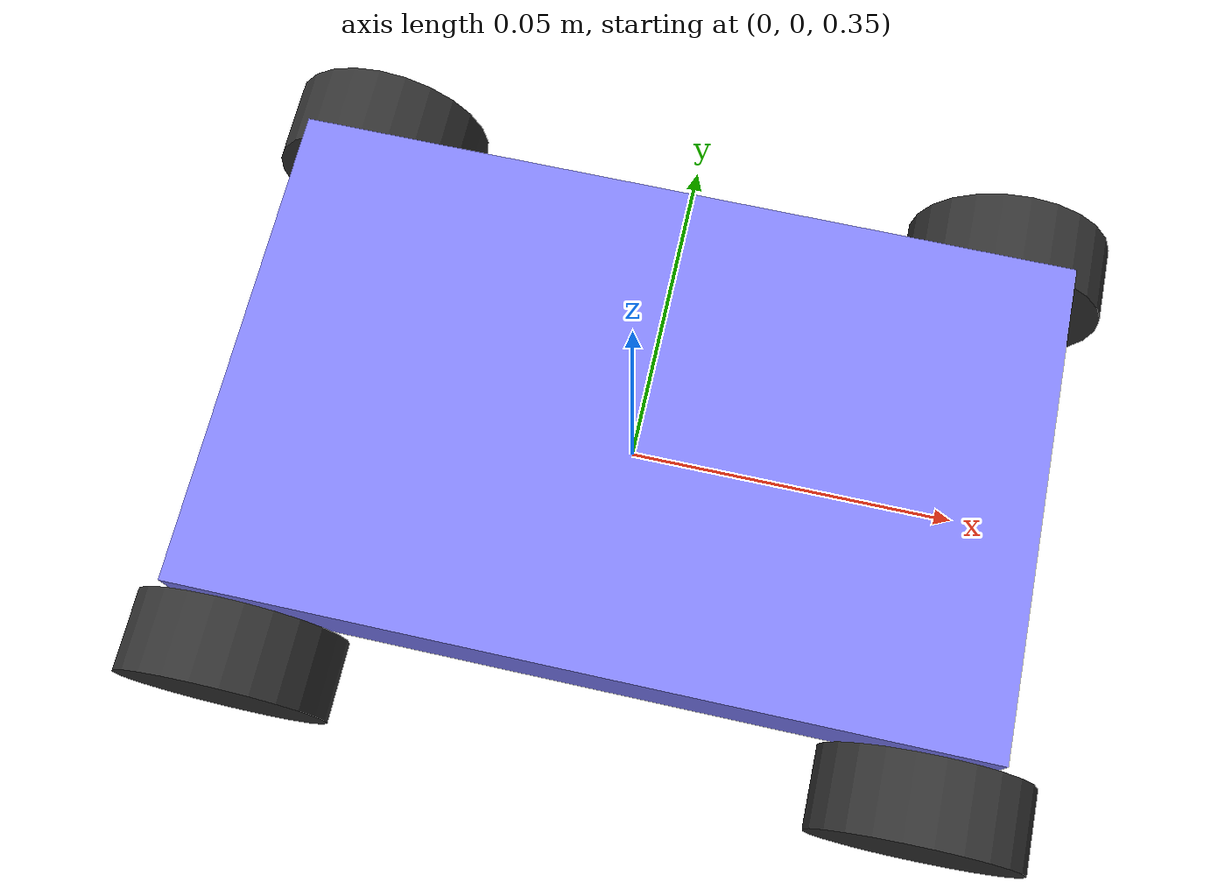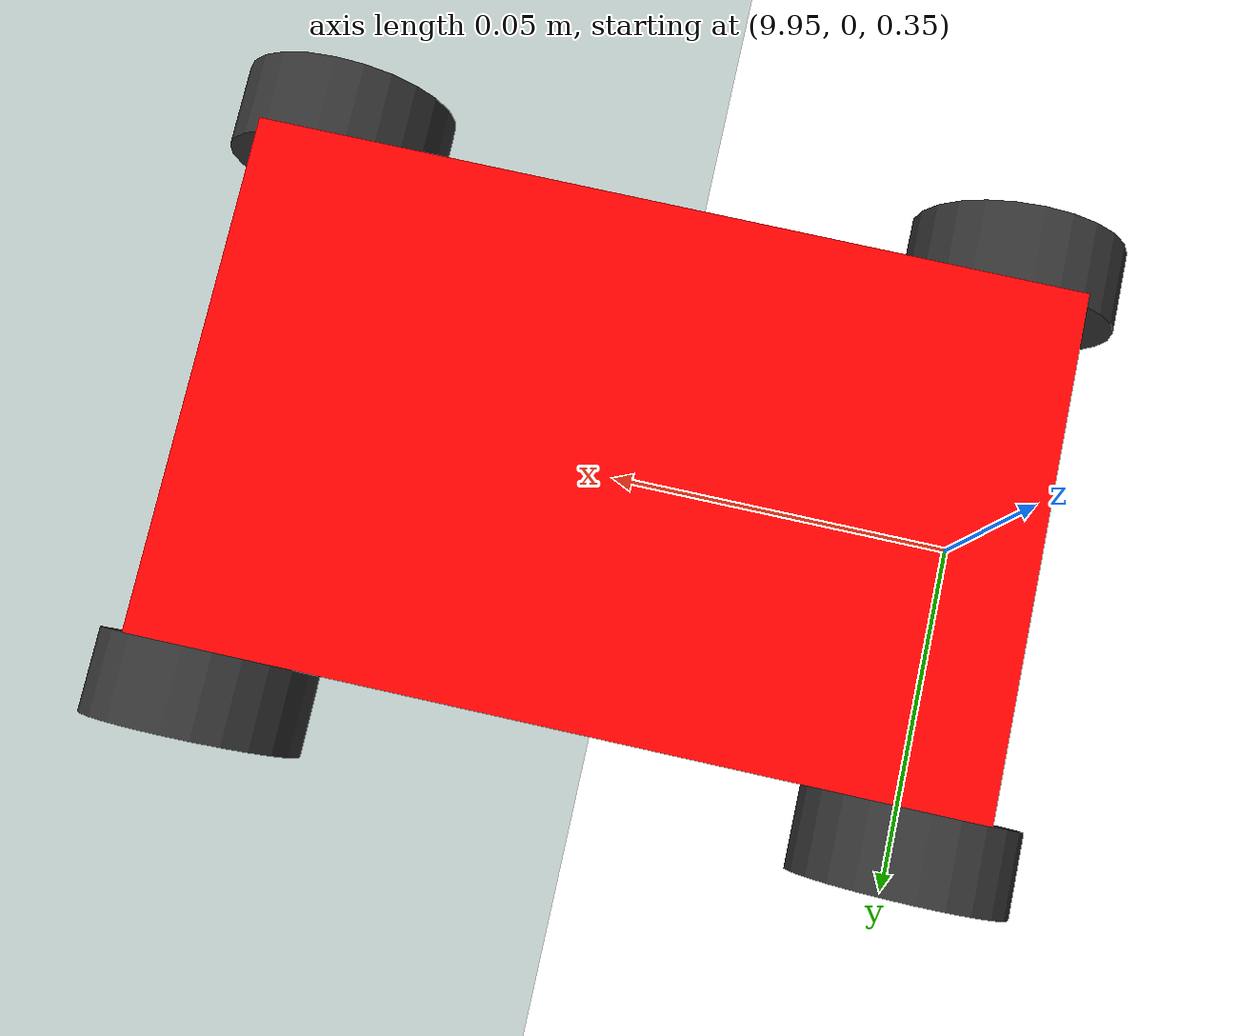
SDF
<?xml version="1.0" ?>
<sdf version="1.8">
  <world name="demo">

    <!-- ─── Core Systems ─────────────────────────────────────────── -->
    <plugin filename="gz-sim-physics-system"
            name="gz::sim::systems::Physics"/>
    <plugin filename="gz-sim-sensors-system"
            name="gz::sim::systems::Sensors">
      <render_engine>ogre2</render_engine>
    </plugin>
    <plugin filename="gz-sim-scene-broadcaster-system"
            name="gz::sim::systems::SceneBroadcaster"/>
    <plugin filename="gz-sim-user-commands-system"
            name="gz::sim::systems::UserCommands"/>
    <plugin filename="BasicSystem"
            name="ros_gz_example_gazebo::BasicSystem"/>
    <plugin filename="FullSystem"
            name="ros_gz_example_gazebo::FullSystem"/>

    <!-- ─── Sun Light ───────────────────────────────────────────── -->
    <light name="sun" type="directional">
      <cast_shadows>true</cast_shadows>
      <pose>0 0 10 0 0 0</pose>
      <diffuse>0.8 0.8 0.8 1</diffuse>
      <specular>0.2 0.2 0.2 1</specular>
      <attenuation>
        <range>1000</range>
        <constant>0.9</constant>
        <linear>0.01</linear>
        <quadratic>0.001</quadratic>
      </attenuation>
      <direction>-0.5 0.1 -0.9</direction>
    </light>

    <!-- ─── Robot #1: diff_drive ─────────────────────────────────── -->
    <model name="diff_drive">
      <self_collide>true</self_collide>
      <pose>0 0 0.35 0 0 0</pose>

      <include merge="true">
        <uri>package://ros_gz_example_description/models/diff_drive</uri>
      </include>

      <plugin filename="gz-sim-joint-state-publisher-system"
              name="gz::sim::systems::JointStatePublisher"/>
      <plugin filename="gz-sim-pose-publisher-system"
              name="gz::sim::systems::PosePublisher">
        <publish_link_pose>true</publish_link_pose>
        <use_pose_vector_msg>true</use_pose_vector_msg>
        <static_publisher>true</static_publisher>
        <static_update_frequency>1</static_update_frequency>
      </plugin>
      <plugin filename="gz-sim-odometry-publisher-system"
              name="gz::sim::systems::OdometryPublisher">
        <odom_frame>diff_drive/odom</odom_frame>
        <robot_base_frame>diff_drive</robot_base_frame>
        <odom_publish_frequency>100</odom_publish_frequency>
      </plugin>
    </model>

    <!-- ─── Robot #2: diff_drive2 ────────────────────────────────── -->
    <model name="diff_drive2">
      <self_collide>true</self_collide>
      <pose>10 0 0.35 0 0 0</pose>

      <include merge="true">
        <uri>package://ros_gz_example_description/models/diff_drive_red</uri>
      </include>

      <plugin filename="gz-sim-joint-state-publisher-system"
              name="gz::sim::systems::JointStatePublisher"/>
      <plugin filename="gz-sim-pose-publisher-system"
              name="gz::sim::systems::PosePublisher">
        <publish_link_pose>true</publish_link_pose>
        <use_pose_vector_msg>true</use_pose_vector_msg>
        <static_publisher>true</static_publisher>
        <static_update_frequency>1</static_update_frequency>
      </plugin>
      <plugin filename="gz-sim-odometry-publisher-system"
              name="gz::sim::systems::OdometryPublisher">
        <odom_frame>diff_drive2/odom</odom_frame>
        <robot_base_frame>diff_drive2</robot_base_frame>
        <odom_publish_frequency>100</odom_publish_frequency>
      </plugin>
    </model>

    <model name="diff_drive3">
      <self_collide>true</self_collide>
      <pose>-20 -20 0.35 0 0 0</pose>

      <include merge="true">
        <uri>package://ros_gz_example_description/models/diff_drive_blue</uri>
      </include>

      <plugin filename="gz-sim-joint-state-publisher-system"
              name="gz::sim::systems::JointStatePublisher"/>
      <plugin filename="gz-sim-pose-publisher-system"
              name="gz::sim::systems::PosePublisher">
        <publish_link_pose>true</publish_link_pose>
        <use_pose_vector_msg>true</use_pose_vector_msg>
        <static_publisher>true</static_publisher>
        <static_update_frequency>1</static_update_frequency>
      </plugin>
      <plugin filename="gz-sim-odometry-publisher-system"
              name="gz::sim::systems::OdometryPublisher">
        <odom_frame>diff_drive3/odom</odom_frame>
        <robot_base_frame>diff_drive3</robot_base_frame>
        <odom_publish_frequency>100</odom_publish_frequency>
      </plugin>
    </model>

    <!-- ─── Ground Plane ─────────────────────────────────────────── -->
    <include>
      <uri>package://ros_gz_example_description/models/my_ground_plane</uri>
    </include>

  </world>
</sdf>

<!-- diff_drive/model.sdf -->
<sdf version="1.8">
    <model name='diff_drive'>
      <link name='chassis'>
        <pose>0 0 0.01 0 -0 0</pose>
        <inertial>
          <mass>0.5</mass>
          <inertia>
            <ixx>0.0002418973</ixx>
            <ixy>0</ixy>
            <ixz>0</ixz>
            <iyy>0.0006075223</iyy>
            <iyz>0</iyz>
            <izz>0.000834375</izz>
          </inertia>
        </inertial>
        <visual name='visual_chassis'>
          <geometry>
            <box>
              <size>0.12 0.075 0.0134363</size>
            </box>
          </geometry>
          <material>
            <ambient>0.5 0.5 1.0 1</ambient>
            <diffuse>0.5 0.5 1.0 1</diffuse>
            <specular>0.0 0.0 1.0 1</specular>
          </material>
        </visual>
        <collision name='collision_chassis'>
          <geometry>
            <box>
              <size>0.12 0.075 0.0134363</size>
            </box>
          </geometry>
        </collision>
      </link>

      <link name='left_wheel'>
        <pose>-0.0525 0.04375 -0.00271815 -1.5707 0 0</pose>
        <inertial>
          <mass>0.02</mass>
          <inertia>
            <ixx>0.00000158073</ixx>
            <ixy>0</ixy>
            <ixz>0</ixz>
            <iyy>0.00000158073</iyy>
            <iyz>0</iyz>
            <izz>0.00000264063</izz>
          </inertia>
        </inertial>
        <visual name='visual_left_wheel'>
          <geometry>
            <cylinder>
              <radius>0.01625</radius>
              <length>0.0125</length>
            </cylinder>
          </geometry>
          <material>
            <ambient>0.2 0.2 0.2 1</ambient>
            <diffuse>0.2 0.2 0.2 1</diffuse>
            <specular>0.2 0.2 0.2 1</specular>
          </material>
        </visual>
        <collision name='collision_left_wheel'>
          <geometry>
            <cylinder>
              <radius>0.01625</radius>
              <length>0.0125</length>
            </cylinder>
          </geometry>
          <surface>
            <friction>
              <ode>
                <!-- Adjust these as needed -->
                <mu>1.0</mu>
                <mu2>1.0</mu2>
                <slip1>0.2</slip1>
                <slip2>0.2</slip2>
              </ode>
            </friction>
          </surface>
        </collision>
      </link>

      <link name='right_wheel'>
        <pose>-0.0525 -0.04375 -0.00271815 -1.5707 0 0</pose>
        <inertial>
          <mass>0.02</mass>
          <inertia>
            <ixx>0.00000158073</ixx>
            <ixy>0</ixy>
            <ixz>0</ixz>
            <iyy>0.00000158073</iyy>
            <iyz>0</iyz>
            <izz>0.00000264063</izz>
          </inertia>
        </inertial>
        <visual name='visual_right_wheel'>
          <geometry>
            <cylinder>
              <radius>0.01625</radius>
              <length>0.0125</length>
            </cylinder>
          </geometry>
          <material>
            <ambient>0.2 0.2 0.2 1</ambient>
            <diffuse>0.2 0.2 0.2 1</diffuse>
            <specular>0.2 0.2 0.2 1</specular>
          </material>
        </visual>
        <collision name='collision_right_wheel'>
          <geometry>
            <cylinder>
              <radius>0.01625</radius>
              <length>0.0125</length>
            </cylinder>
          </geometry>
          <surface>
            <friction>
              <ode>
                <!-- Adjust these as needed -->
                <mu>1.0</mu>
                <mu2>1.0</mu2>
                <slip1>0.2</slip1>
                <slip2>0.2</slip2>
              </ode>
            </friction>
          </surface>
        </collision>
      </link>

      <link name='left_wheel_front'>
        <pose>0.0525 0.04375 -0.00271815 -1.5707 0 0</pose>
        <inertial>
          <mass>0.02</mass>
          <inertia>
            <ixx>0.00000158073</ixx>
            <ixy>0</ixy>
            <ixz>0</ixz>
            <iyy>0.00000158073</iyy>
            <iyz>0</iyz>
            <izz>0.00000264063</izz>
          </inertia>
        </inertial>
        <visual name='visual_left_wheel_front'>
          <geometry>
            <cylinder>
              <radius>0.01625</radius>
              <length>0.0125</length>
            </cylinder>
          </geometry>
          <material>
            <ambient>0.2 0.2 0.2 1</ambient>
            <diffuse>0.2 0.2 0.2 1</diffuse>
            <specular>0.2 0.2 0.2 1</specular>
          </material>
        </visual>
        <collision name='collision_left_wheel_front'>
          <geometry>
            <cylinder>
              <radius>0.01625</radius>
              <length>0.0125</length>
            </cylinder>
          </geometry>
          <surface>
            <friction>
              <ode>
                <!-- Adjust these as needed -->
                <mu>1.0</mu>
                <mu2>1.0</mu2>
                <slip1>0.2</slip1>
                <slip2>0.2</slip2>
              </ode>
            </friction>
          </surface>
        </collision>
      </link>

      <link name='right_wheel_front'>
        <pose>0.0525 -0.04375 -0.00271815 -1.5707 0 0</pose>
        <inertial>
          <mass>0.02</mass>
          <inertia>
            <ixx>0.00000158073</ixx>
            <ixy>0</ixy>
            <ixz>0</ixz>
            <iyy>0.00000158073</iyy>
            <iyz>0</iyz>
            <izz>0.00000264063</izz>
          </inertia>
        </inertial>
        <visual name='visual_right_wheel_front'>
          <geometry>
            <cylinder>
              <radius>0.01625</radius>
              <length>0.0125</length>
            </cylinder>
          </geometry>
          <material>
            <ambient>0.2 0.2 0.2 1</ambient>
            <diffuse>0.2 0.2 0.2 1</diffuse>
            <specular>0.2 0.2 0.2 1</specular>
          </material>
        </visual>
        <collision name='collision_right_wheel_front'>
          <geometry>
            <cylinder>
              <radius>0.01625</radius>
              <length>0.0125</length>
            </cylinder>
          </geometry>
          <surface>
            <friction>
              <ode>
                <!-- Adjust these as needed -->
                <mu>1.0</mu>
                <mu2>1.0</mu2>
                <slip1>0.2</slip1>
                <slip2>0.2</slip2>
              </ode>
            </friction>
          </surface>
        </collision>
      </link>

      <joint name='left_wheel_joint' type='revolute'>
        <parent>chassis</parent>
        <child>left_wheel</child>
        <axis>
          <xyz>0 0 1</xyz>
          <limit>
            <lower>-1.79769e+308</lower>
            <upper>1.79769e+308</upper>
          </limit>
        </axis>
      </joint>

      <joint name='left_wheel_front_joint' type='revolute'>
        <parent>chassis</parent>
        <child>left_wheel_front</child>
        <axis>
          <xyz>0 0 1</xyz>
          <limit>
            <lower>-1.79769e+308</lower>
            <upper>1.79769e+308</upper>
          </limit>
        </axis>
      </joint>

      <joint name='right_wheel_joint' type='revolute'>
        <parent>chassis</parent>
        <child>right_wheel</child>
        <axis>
          <xyz>0 0 1</xyz>
          <limit>
            <lower>-1.79769e+308</lower>
            <upper>1.79769e+308</upper>
          </limit>
        </axis>
      </joint>

      <joint name='right_wheel_front_joint' type='revolute'>
        <parent>chassis</parent>
        <child>right_wheel_front</child>
        <axis>
          <xyz>0 0 1</xyz>
          <limit>
            <lower>-1.79769e+308</lower>
            <upper>1.79769e+308</upper>
          </limit>
        </axis>
      </joint>

      <plugin
        filename="ignition-gazebo-diff-drive-system"
        name="ignition::gazebo::systems::DiffDrive">
        <left_joint>left_wheel_joint</left_joint>
        <left_joint>left_wheel_front_joint</left_joint>
        <right_joint>right_wheel_joint</right_joint>
        <right_joint>right_wheel_front_joint</right_joint>
        <wheel_radius>0.01625</wheel_radius>

        <!-- 🛠️ Add Odometry & TF Configuration -->
        <odom_publish_frequency>50</odom_publish_frequency>
        <odom_topic>/diff_drive/odometry</odom_topic>  <!-- Ensure odom topic is published -->
        <tf_topic>/tf</tf_topic>  <!-- Ensure transforms are published -->

        <!-- 🔥 Fix Missing TF Frames -->
        <frame_id>diff_drive/odom</frame_id>  <!-- Set odometry frame -->
        <child_frame_id>chassis</child_frame_id>  <!-- Connects odometry to chassis -->

        <max_linear_acceleration>0.1</max_linear_acceleration>
        <min_linear_acceleration>-0.2</min_linear_acceleration>
        <max_linear_velocity>0.5</max_linear_velocity>
        <min_linear_velocity>-0.5</min_linear_velocity>

        <max_angular_acceleration>0.1</max_angular_acceleration>
        <min_angular_acceleration>-0.1</min_angular_acceleration>
        <max_angular_velocity>0.1</max_angular_velocity>
        <min_angular_velocity>-0.1</min_angular_velocity>
      </plugin>
    </model>
</sdf>

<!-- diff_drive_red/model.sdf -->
<sdf version="1.8">
    <model name='diff_drive'>
      <link name='chassis'>
        <pose>0 0 0.01 0 -0 0</pose>
        <inertial>
          <mass>0.5</mass>
          <inertia>
            <ixx>0.0002418973</ixx>
            <ixy>0</ixy>
            <ixz>0</ixz>
            <iyy>0.0006075223</iyy>
            <iyz>0</iyz>
            <izz>0.000834375</izz>
          </inertia>
        </inertial>
        <visual name='visual_chassis'>
          <geometry>
            <box>
              <size>0.12 0.075 0.0134363</size>
            </box>
          </geometry>
          <material>
            <ambient>1.0 0.0 0.0 1</ambient>
            <diffuse>1.0 0.0 0.0 1</diffuse>
            <specular>0.2 0.2 0.2 1</specular>
          </material>
        </visual>
        <collision name='collision_chassis'>
          <geometry>
            <box>
              <size>0.12 0.075 0.0134363</size>
            </box>
          </geometry>
        </collision>
      </link>

      <link name='left_wheel'>
        <pose>-0.0525 0.04375 -0.00271815 -1.5707 0 0</pose>
        <inertial>
          <mass>0.02</mass>
          <inertia>
            <ixx>0.00000158073</ixx>
            <ixy>0</ixy>
            <ixz>0</ixz>
            <iyy>0.00000158073</iyy>
            <iyz>0</iyz>
            <izz>0.00000264063</izz>
          </inertia>
        </inertial>
        <visual name='visual_left_wheel'>
          <geometry>
            <cylinder>
              <radius>0.01625</radius>
              <length>0.0125</length>
            </cylinder>
          </geometry>
          <material>
            <ambient>0.2 0.2 0.2 1</ambient>
            <diffuse>0.2 0.2 0.2 1</diffuse>
            <specular>0.2 0.2 0.2 1</specular>
          </material>
        </visual>
        <collision name='collision_left_wheel'>
          <geometry>
            <cylinder>
              <radius>0.01625</radius>
              <length>0.0125</length>
            </cylinder>
          </geometry>
          <surface>
            <friction>
              <ode>
                <!-- Adjust these as needed -->
                <mu>1.0</mu>
                <mu2>1.0</mu2>
                <slip1>0.2</slip1>
                <slip2>0.2</slip2>
              </ode>
            </friction>
          </surface>
        </collision>
      </link>

      <link name='right_wheel'>
        <pose>-0.0525 -0.04375 -0.00271815 -1.5707 0 0</pose>
        <inertial>
          <mass>0.02</mass>
          <inertia>
            <ixx>0.00000158073</ixx>
            <ixy>0</ixy>
            <ixz>0</ixz>
            <iyy>0.00000158073</iyy>
            <iyz>0</iyz>
            <izz>0.00000264063</izz>
          </inertia>
        </inertial>
        <visual name='visual_right_wheel'>
          <geometry>
            <cylinder>
              <radius>0.01625</radius>
              <length>0.0125</length>
            </cylinder>
          </geometry>
          <material>
            <ambient>0.2 0.2 0.2 1</ambient>
            <diffuse>0.2 0.2 0.2 1</diffuse>
            <specular>0.2 0.2 0.2 1</specular>
          </material>
        </visual>
        <collision name='collision_right_wheel'>
          <geometry>
            <cylinder>
              <radius>0.01625</radius>
              <length>0.0125</length>
            </cylinder>
          </geometry>
          <surface>
            <friction>
              <ode>
                <!-- Adjust these as needed -->
                <mu>1.0</mu>
                <mu2>1.0</mu2>
                <slip1>0.2</slip1>
                <slip2>0.2</slip2>
              </ode>
            </friction>
          </surface>
        </collision>
      </link>

      <link name='left_wheel_front'>
        <pose>0.0525 0.04375 -0.00271815 -1.5707 0 0</pose>
        <inertial>
          <mass>0.02</mass>
          <inertia>
            <ixx>0.00000158073</ixx>
            <ixy>0</ixy>
            <ixz>0</ixz>
            <iyy>0.00000158073</iyy>
            <iyz>0</iyz>
            <izz>0.00000264063</izz>
          </inertia>
        </inertial>
        <visual name='visual_left_wheel_front'>
          <geometry>
            <cylinder>
              <radius>0.01625</radius>
              <length>0.0125</length>
            </cylinder>
          </geometry>
          <material>
            <ambient>0.2 0.2 0.2 1</ambient>
            <diffuse>0.2 0.2 0.2 1</diffuse>
            <specular>0.2 0.2 0.2 1</specular>
          </material>
        </visual>
        <collision name='collision_left_wheel_front'>
          <geometry>
            <cylinder>
              <radius>0.01625</radius>
              <length>0.0125</length>
            </cylinder>
          </geometry>
          <surface>
            <friction>
              <ode>
                <!-- Adjust these as needed -->
                <mu>1.0</mu>
                <mu2>1.0</mu2>
                <slip1>0.2</slip1>
                <slip2>0.2</slip2>
              </ode>
            </friction>
          </surface>
        </collision>
      </link>

      <link name='right_wheel_front'>
        <pose>0.0525 -0.04375 -0.00271815 -1.5707 0 0</pose>
        <inertial>
          <mass>0.02</mass>
          <inertia>
            <ixx>0.00000158073</ixx>
            <ixy>0</ixy>
            <ixz>0</ixz>
            <iyy>0.00000158073</iyy>
            <iyz>0</iyz>
            <izz>0.00000264063</izz>
          </inertia>
        </inertial>
        <visual name='visual_right_wheel_front'>
          <geometry>
            <cylinder>
              <radius>0.01625</radius>
              <length>0.0125</length>
            </cylinder>
          </geometry>
          <material>
            <ambient>0.2 0.2 0.2 1</ambient>
            <diffuse>0.2 0.2 0.2 1</diffuse>
            <specular>0.2 0.2 0.2 1</specular>
          </material>
        </visual>
        <collision name='collision_right_wheel_front'>
          <geometry>
            <cylinder>
              <radius>0.01625</radius>
              <length>0.0125</length>
            </cylinder>
          </geometry>
          <surface>
            <friction>
              <ode>
                <!-- Adjust these as needed -->
                <mu>1.0</mu>
                <mu2>1.0</mu2>
                <slip1>0.2</slip1>
                <slip2>0.2</slip2>
              </ode>
            </friction>
          </surface>
        </collision>
      </link>

      <joint name='left_wheel_joint' type='revolute'>
        <parent>chassis</parent>
        <child>left_wheel</child>
        <axis>
          <xyz>0 0 1</xyz>
          <limit>
            <lower>-1.79769e+308</lower>
            <upper>1.79769e+308</upper>
          </limit>
        </axis>
      </joint>

      <joint name='left_wheel_front_joint' type='revolute'>
        <parent>chassis</parent>
        <child>left_wheel_front</child>
        <axis>
          <xyz>0 0 1</xyz>
          <limit>
            <lower>-1.79769e+308</lower>
            <upper>1.79769e+308</upper>
          </limit>
        </axis>
      </joint>

      <joint name='right_wheel_joint' type='revolute'>
        <parent>chassis</parent>
        <child>right_wheel</child>
        <axis>
          <xyz>0 0 1</xyz>
          <limit>
            <lower>-1.79769e+308</lower>
            <upper>1.79769e+308</upper>
          </limit>
        </axis>
      </joint>

      <joint name='right_wheel_front_joint' type='revolute'>
        <parent>chassis</parent>
        <child>right_wheel_front</child>
        <axis>
          <xyz>0 0 1</xyz>
          <limit>
            <lower>-1.79769e+308</lower>
            <upper>1.79769e+308</upper>
          </limit>
        </axis>
      </joint>

      <plugin
        filename="ignition-gazebo-diff-drive-system"
        name="ignition::gazebo::systems::DiffDrive">
        <left_joint>left_wheel_joint</left_joint>
        <left_joint>left_wheel_front_joint</left_joint>
        <right_joint>right_wheel_joint</right_joint>
        <right_joint>right_wheel_front_joint</right_joint>
        <wheel_radius>0.01625</wheel_radius>

        <!-- 🛠️ Add Odometry & TF Configuration -->
        <odom_publish_frequency>50</odom_publish_frequency>
        <odom_topic>/diff_drive/odometry</odom_topic>  <!-- Ensure odom topic is published -->
        <tf_topic>/tf</tf_topic>  <!-- Ensure transforms are published -->

        <!-- 🔥 Fix Missing TF Frames -->
        <frame_id>diff_drive/odom</frame_id>  <!-- Set odometry frame -->
        <child_frame_id>chassis</child_frame_id>  <!-- Connects odometry to chassis -->

        <max_linear_acceleration>0.1</max_linear_acceleration>
        <min_linear_acceleration>-0.2</min_linear_acceleration>
        <max_linear_velocity>0.5</max_linear_velocity>
        <min_linear_velocity>-0.5</min_linear_velocity>

        <max_angular_acceleration>0.1</max_angular_acceleration>
        <min_angular_acceleration>-0.1</min_angular_acceleration>
        <max_angular_velocity>0.1</max_angular_velocity>
        <min_angular_velocity>-0.1</min_angular_velocity>
      </plugin>
    </model>
</sdf>

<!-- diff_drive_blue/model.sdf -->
<sdf version="1.8">
    <model name='diff_drive'>
      <link name='chassis'>
        <pose>0 0 0.01 0 -0 0</pose>
        <inertial>
          <mass>0.5</mass>
          <inertia>
            <ixx>0.0002418973</ixx>
            <ixy>0</ixy>
            <ixz>0</ixz>
            <iyy>0.0006075223</iyy>
            <iyz>0</iyz>
            <izz>0.000834375</izz>
          </inertia>
        </inertial>
        <visual name='visual_chassis'>
          <geometry>
            <box>
              <size>0.12 0.075 0.0134363</size>
            </box>
          </geometry>
          <material>
            <ambient>0.0 0.0 1.0 1</ambient>
            <diffuse>0.0 0.0 1.0 1</diffuse>
            <specular>0.2 0.2 0.2 1</specular>
          </material>
        </visual>
        <collision name='collision_chassis'>
          <geometry>
            <box>
              <size>0.12 0.075 0.0134363</size>
            </box>
          </geometry>
        </collision>
      </link>

      <link name='left_wheel'>
        <pose>-0.0525 0.04375 -0.00271815 -1.5707 0 0</pose>
        <inertial>
          <mass>0.02</mass>
          <inertia>
            <ixx>0.00000158073</ixx>
            <ixy>0</ixy>
            <ixz>0</ixz>
            <iyy>0.00000158073</iyy>
            <iyz>0</iyz>
            <izz>0.00000264063</izz>
          </inertia>
        </inertial>
        <visual name='visual_left_wheel'>
          <geometry>
            <cylinder>
              <radius>0.01625</radius>
              <length>0.0125</length>
            </cylinder>
          </geometry>
          <material>
            <ambient>0.2 0.2 0.2 1</ambient>
            <diffuse>0.2 0.2 0.2 1</diffuse>
            <specular>0.2 0.2 0.2 1</specular>
          </material>
        </visual>
        <collision name='collision_left_wheel'>
          <geometry>
            <cylinder>
              <radius>0.01625</radius>
              <length>0.0125</length>
            </cylinder>
          </geometry>
          <surface>
            <friction>
              <ode>
                <!-- Adjust these as needed -->
                <mu>1.0</mu>
                <mu2>1.0</mu2>
                <slip1>0.2</slip1>
                <slip2>0.2</slip2>
              </ode>
            </friction>
          </surface>
        </collision>
      </link>

      <link name='right_wheel'>
        <pose>-0.0525 -0.04375 -0.00271815 -1.5707 0 0</pose>
        <inertial>
          <mass>0.02</mass>
          <inertia>
            <ixx>0.00000158073</ixx>
            <ixy>0</ixy>
            <ixz>0</ixz>
            <iyy>0.00000158073</iyy>
            <iyz>0</iyz>
            <izz>0.00000264063</izz>
          </inertia>
        </inertial>
        <visual name='visual_right_wheel'>
          <geometry>
            <cylinder>
              <radius>0.01625</radius>
              <length>0.0125</length>
            </cylinder>
          </geometry>
          <material>
            <ambient>0.2 0.2 0.2 1</ambient>
            <diffuse>0.2 0.2 0.2 1</diffuse>
            <specular>0.2 0.2 0.2 1</specular>
          </material>
        </visual>
        <collision name='collision_right_wheel'>
          <geometry>
            <cylinder>
              <radius>0.01625</radius>
              <length>0.0125</length>
            </cylinder>
          </geometry>
          <surface>
            <friction>
              <ode>
                <!-- Adjust these as needed -->
                <mu>1.0</mu>
                <mu2>1.0</mu2>
                <slip1>0.2</slip1>
                <slip2>0.2</slip2>
              </ode>
            </friction>
          </surface>
        </collision>
      </link>

      <link name='left_wheel_front'>
        <pose>0.0525 0.04375 -0.00271815 -1.5707 0 0</pose>
        <inertial>
          <mass>0.02</mass>
          <inertia>
            <ixx>0.00000158073</ixx>
            <ixy>0</ixy>
            <ixz>0</ixz>
            <iyy>0.00000158073</iyy>
            <iyz>0</iyz>
            <izz>0.00000264063</izz>
          </inertia>
        </inertial>
        <visual name='visual_left_wheel_front'>
          <geometry>
            <cylinder>
              <radius>0.01625</radius>
              <length>0.0125</length>
            </cylinder>
          </geometry>
          <material>
            <ambient>0.2 0.2 0.2 1</ambient>
            <diffuse>0.2 0.2 0.2 1</diffuse>
            <specular>0.2 0.2 0.2 1</specular>
          </material>
        </visual>
        <collision name='collision_left_wheel_front'>
          <geometry>
            <cylinder>
              <radius>0.01625</radius>
              <length>0.0125</length>
            </cylinder>
          </geometry>
          <surface>
            <friction>
              <ode>
                <!-- Adjust these as needed -->
                <mu>1.0</mu>
                <mu2>1.0</mu2>
                <slip1>0.2</slip1>
                <slip2>0.2</slip2>
              </ode>
            </friction>
          </surface>
        </collision>
      </link>

      <link name='right_wheel_front'>
        <pose>0.0525 -0.04375 -0.00271815 -1.5707 0 0</pose>
        <inertial>
          <mass>0.02</mass>
          <inertia>
            <ixx>0.00000158073</ixx>
            <ixy>0</ixy>
            <ixz>0</ixz>
            <iyy>0.00000158073</iyy>
            <iyz>0</iyz>
            <izz>0.00000264063</izz>
          </inertia>
        </inertial>
        <visual name='visual_right_wheel_front'>
          <geometry>
            <cylinder>
              <radius>0.01625</radius>
              <length>0.0125</length>
            </cylinder>
          </geometry>
          <material>
            <ambient>0.2 0.2 0.2 1</ambient>
            <diffuse>0.2 0.2 0.2 1</diffuse>
            <specular>0.2 0.2 0.2 1</specular>
          </material>
        </visual>
        <collision name='collision_right_wheel_front'>
          <geometry>
            <cylinder>
              <radius>0.01625</radius>
              <length>0.0125</length>
            </cylinder>
          </geometry>
          <surface>
            <friction>
              <ode>
                <!-- Adjust these as needed -->
                <mu>1.0</mu>
                <mu2>1.0</mu2>
                <slip1>0.2</slip1>
                <slip2>0.2</slip2>
              </ode>
            </friction>
          </surface>
        </collision>
      </link>

      <joint name='left_wheel_joint' type='revolute'>
        <parent>chassis</parent>
        <child>left_wheel</child>
        <axis>
          <xyz>0 0 1</xyz>
          <limit>
            <lower>-1.79769e+308</lower>
            <upper>1.79769e+308</upper>
          </limit>
        </axis>
      </joint>

      <joint name='left_wheel_front_joint' type='revolute'>
        <parent>chassis</parent>
        <child>left_wheel_front</child>
        <axis>
          <xyz>0 0 1</xyz>
          <limit>
            <lower>-1.79769e+308</lower>
            <upper>1.79769e+308</upper>
          </limit>
        </axis>
      </joint>

      <joint name='right_wheel_joint' type='revolute'>
        <parent>chassis</parent>
        <child>right_wheel</child>
        <axis>
          <xyz>0 0 1</xyz>
          <limit>
            <lower>-1.79769e+308</lower>
            <upper>1.79769e+308</upper>
          </limit>
        </axis>
      </joint>

      <joint name='right_wheel_front_joint' type='revolute'>
        <parent>chassis</parent>
        <child>right_wheel_front</child>
        <axis>
          <xyz>0 0 1</xyz>
          <limit>
            <lower>-1.79769e+308</lower>
            <upper>1.79769e+308</upper>
          </limit>
        </axis>
      </joint>

      <plugin
        filename="ignition-gazebo-diff-drive-system"
        name="ignition::gazebo::systems::DiffDrive">
        <left_joint>left_wheel_joint</left_joint>
        <left_joint>left_wheel_front_joint</left_joint>
        <right_joint>right_wheel_joint</right_joint>
        <right_joint>right_wheel_front_joint</right_joint>
        <wheel_radius>0.01625</wheel_radius>

        <!-- 🛠️ Add Odometry & TF Configuration -->
        <odom_publish_frequency>50</odom_publish_frequency>
        <odom_topic>/diff_drive/odometry</odom_topic>  <!-- Ensure odom topic is published -->
        <tf_topic>/tf</tf_topic>  <!-- Ensure transforms are published -->

        <!-- 🔥 Fix Missing TF Frames -->
        <frame_id>diff_drive/odom</frame_id>  <!-- Set odometry frame -->
        <child_frame_id>chassis</child_frame_id>  <!-- Connects odometry to chassis -->

        <max_linear_acceleration>0.1</max_linear_acceleration>
        <min_linear_acceleration>-0.2</min_linear_acceleration>
        <max_linear_velocity>0.5</max_linear_velocity>
        <min_linear_velocity>-0.5</min_linear_velocity>

        <max_angular_acceleration>0.1</max_angular_acceleration>
        <min_angular_acceleration>-0.1</min_angular_acceleration>
        <max_angular_velocity>0.1</max_angular_velocity>
        <min_angular_velocity>-0.1</min_angular_velocity>
      </plugin>
    </model>
</sdf>

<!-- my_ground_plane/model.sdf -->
<sdf version="1.8">
  <model name="my_ground_plane">
    <static>true</static>
    <link name="link">
      <!-- COLLISION: define a plane for physics -->
      <collision name="collision">
        <geometry>
          <plane>
            <normal>0 0 1</normal>
            <size>40 40</size>
          </plane>
        </geometry>
      </collision>

      <!-- VISUAL: define the same plane for rendering -->
      <visual name="visual">
        <geometry>
          <plane>
            <normal>0 0 1</normal>
            <size>20 20</size>
          </plane>
        </geometry>
        <material>
          <!-- Simple color fallback -->
          <diffuse>1 1 1 1</diffuse>
          <specular>1 1 1 1</specular>

          <!-- PBR block, referencing your texture -->
          <pbr>
            <metal>
              <albedo_map>materials/textures/14ocak2024normalview.jpg</albedo_map>
            </metal>
          </pbr>
        </material>
      </visual>
    </link>
  </model>
</sdf>
